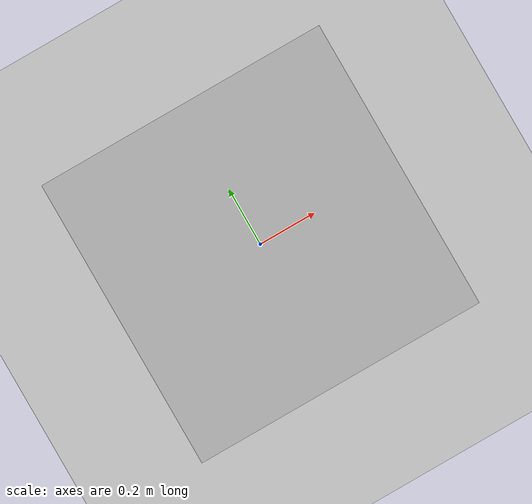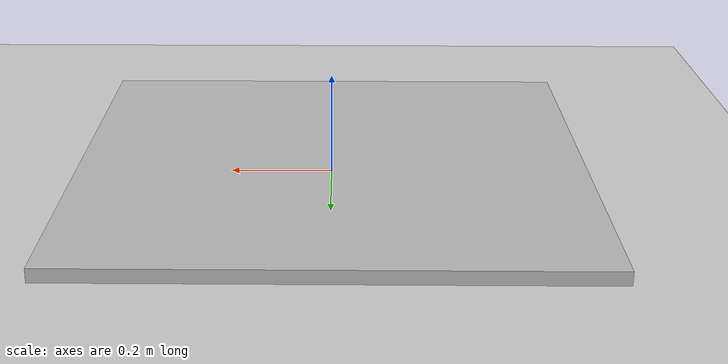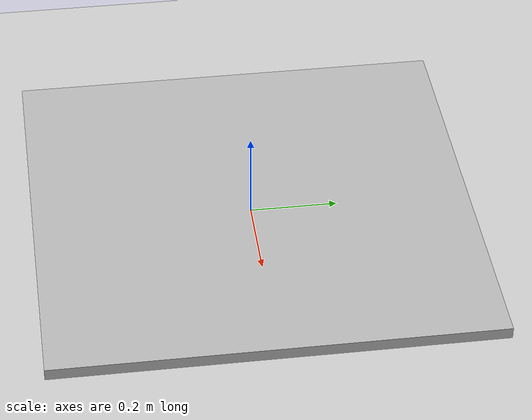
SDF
<sdf version="1.6">
 <world name="__default__">
  <gravity>0 0 -9.8</gravity>
  <magnetic_field>6e-06 2.3e-05 -4.2e-05</magnetic_field>
  <atmosphere type="adiabatic"/>
  <physics name="default_physics" default="0" type="ode">
   <max_step_size>0.001</max_step_size>
   <real_time_factor>1</real_time_factor>
   <real_time_update_rate>1000</real_time_update_rate>
  </physics>
  <scene><ambient>0.4 0.4 0.4 1</ambient><background>0.7 0.7 0.7 1</background><shadows>1</shadows></scene>
  <audio><device>default</device></audio>
  <spherical_coordinates>
   <surface_model>EARTH_WGS84</surface_model>
   <latitude_deg>0</latitude_deg>
   <longitude_deg>0</longitude_deg>
   <elevation>0</elevation>
   <heading_deg>0</heading_deg>
  </spherical_coordinates>
  <model name="Mine">
   <link name="link">
    <inertial>
     <mass>0.0264627</mass>
     <inertia>
      <ixx>0.00220676</ixx>
      <ixy>0</ixy>
      <ixz>0</ixz>
      <iyy>0.00220677</iyy>
      <iyz>0</iyz>
      <izz>0.00441044</izz>
     </inertia>
    </inertial>
    <visual name="visual">
     <geometry><box><size>1 1 0.026463</size></box></geometry>
     <material>
      <script><name>Mine/X_mark</name><uri>model://Mine/materials/scripts/x_mark.material</uri></script>
     </material>
    </visual>
    <collision name="collision">
     <geometry><box><size>1 1 0.026463</size></box></geometry>
     <surface>
      <friction>
       <ode><mu>1</mu><mu2>1</mu2><fdir1>0 0 0</fdir1><slip1>0</slip1><slip2>0</slip2></ode>
       <torsional>
        <coefficient>1</coefficient>
        <patch_radius>0</patch_radius>
        <surface_radius>0</surface_radius>
        <use_patch_radius>1</use_patch_radius>
        <ode><slip>0</slip></ode>
       </torsional>
      </friction>
      <bounce><restitution_coefficient>0</restitution_coefficient><threshold>1e+06</threshold></bounce>
      <contact>
       <collide_without_contact>0</collide_without_contact>
       <collide_without_contact_bitmask>1</collide_without_contact_bitmask>
       <collide_bitmask>1</collide_bitmask>
       <ode>
        <soft_cfm>0</soft_cfm>
        <soft_erp>0.2</soft_erp>
        <kp>1e+13</kp>
        <kd>1</kd>
        <max_vel>0.01</max_vel>
        <min_depth>0</min_depth>
       </ode>
       <bullet>
        <split_impulse>1</split_impulse>
        <split_impulse_penetration_threshold>-0.01</split_impulse_penetration_threshold>
        <soft_cfm>0</soft_cfm>
        <soft_erp>0.2</soft_erp>
        <kp>1e+13</kp>
        <kd>1</kd>
       </bullet>
      </contact>
     </surface>
    </collision>
   </link>
   <static>0</static>
   <pose>0 -0 0.013231 0 -0 0</pose>
  </model>
  <model name="ground_plane">
   <static>1</static>
   <link name="link">
    <collision name="collision">
     <geometry><plane><normal>0 0 1</normal><size>100 100</size></plane></geometry>
     <surface>
      <contact><collide_bitmask>65535</collide_bitmask></contact>
      <friction><ode><mu>100</mu><mu2>50</mu2></ode></friction>
     </surface>
    </collision>
    <visual name="visual">
     <cast_shadows>0</cast_shadows>
     <geometry><plane><normal>0 0 1</normal><size>100 100</size></plane></geometry>
     <material>
      <script><uri>file://media/materials/scripts/gazebo.material</uri><name>Gazebo/Grey</name></script>
     </material>
    </visual>
   </link>
   <pose>-8.14024 -1.04169 0 0 -0 0</pose>
  </model>
 </world>
</sdf>
